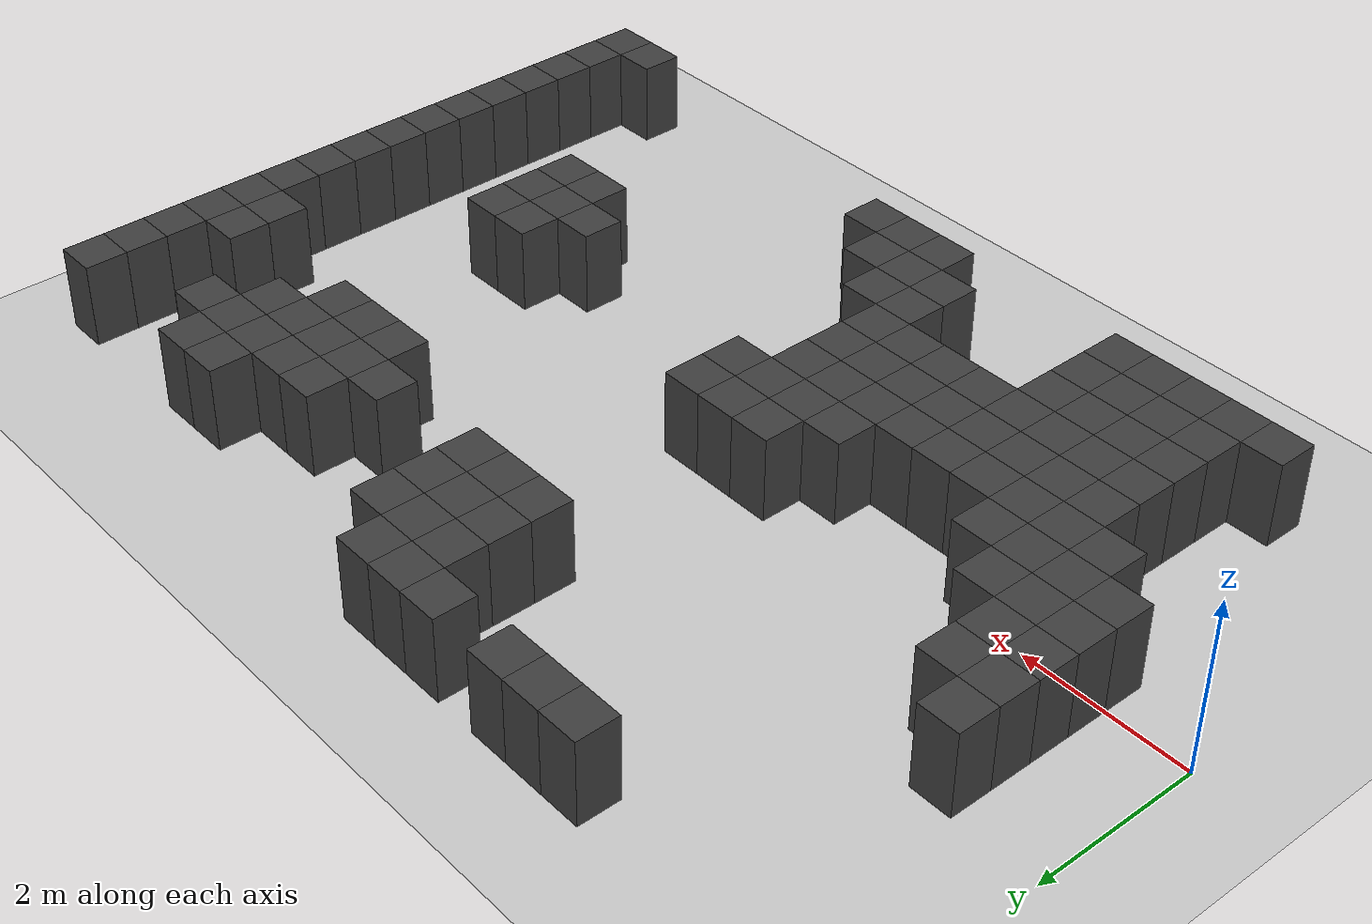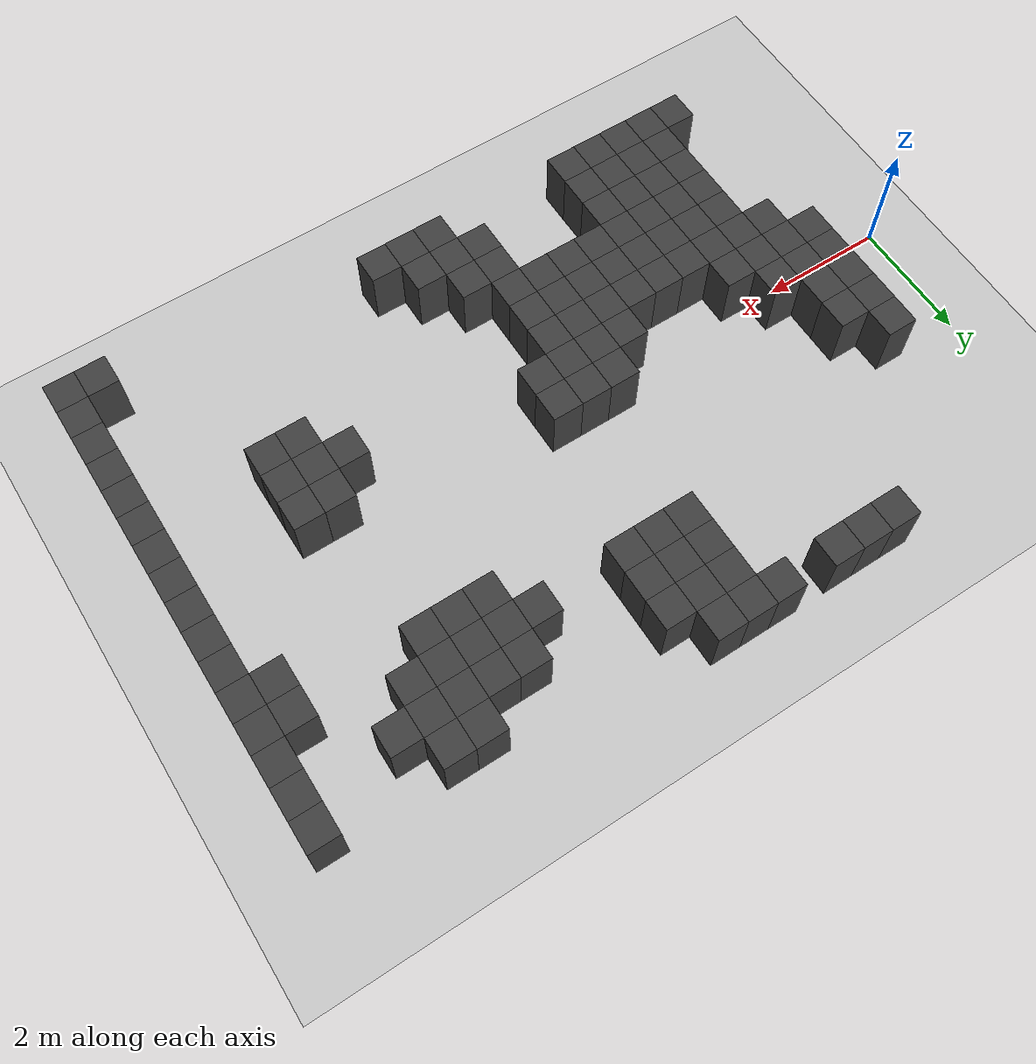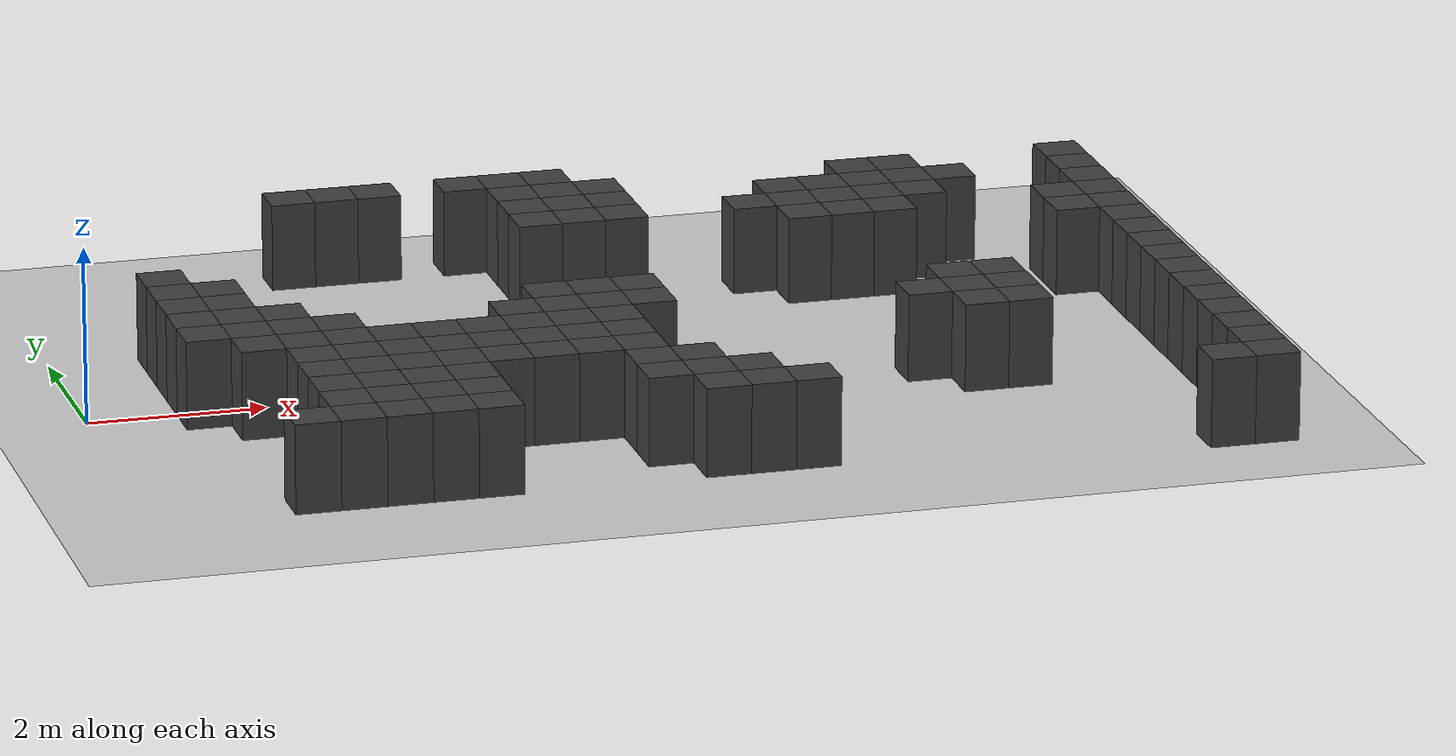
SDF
<sdf version="1.7">
 <world name="map_8661">
  <model name="ground_plane">
   <static>true</static>
   <link name="link">
    <collision name="collision">
     <geometry><plane><normal>0 0 1</normal><size>200 200</size></plane></geometry>
    </collision>
    <visual name="visual">
     <geometry><plane><normal>0 0 1</normal><size>200 200</size></plane></geometry>
     <material><ambient>0.8 0.8 0.8 1</ambient><diffuse>0.8 0.8 0.8 1</diffuse></material>
    </visual>
   </link>
  </model>
  <model name="maze_environment">
   <static>true</static>
   <link name="wall_236">
    <pose>3.250 4.250 0.500 0 0 0</pose>
    <collision name="col"><geometry><box><size>0.5 0.5 1.0</size></box></geometry></collision>
    <visual name="vis">
     <geometry><box><size>0.5 0.5 1.0</size></box></geometry>
     <material><ambient>0.15 0.15 0.15 1</ambient><diffuse>0.25 0.25 0.25 1</diffuse></material>
    </visual>
   </link>
   <link name="wall_237">
    <pose>3.750 4.250 0.500 0 0 0</pose>
    <collision name="col"><geometry><box><size>0.5 0.5 1.0</size></box></geometry></collision>
    <visual name="vis">
     <geometry><box><size>0.5 0.5 1.0</size></box></geometry>
     <material><ambient>0.15 0.15 0.15 1</ambient><diffuse>0.25 0.25 0.25 1</diffuse></material>
    </visual>
   </link>
   <link name="wall_238">
    <pose>4.250 4.250 0.500 0 0 0</pose>
    <collision name="col"><geometry><box><size>0.5 0.5 1.0</size></box></geometry></collision>
    <visual name="vis">
     <geometry><box><size>0.5 0.5 1.0</size></box></geometry>
     <material><ambient>0.15 0.15 0.15 1</ambient><diffuse>0.25 0.25 0.25 1</diffuse></material>
    </visual>
   </link>
   <link name="wall_239">
    <pose>5.250 4.250 0.500 0 0 0</pose>
    <collision name="col"><geometry><box><size>0.5 0.5 1.0</size></box></geometry></collision>
    <visual name="vis">
     <geometry><box><size>0.5 0.5 1.0</size></box></geometry>
     <material><ambient>0.15 0.15 0.15 1</ambient><diffuse>0.25 0.25 0.25 1</diffuse></material>
    </visual>
   </link>
   <link name="wall_240">
    <pose>5.750 4.250 0.500 0 0 0</pose>
    <collision name="col"><geometry><box><size>0.5 0.5 1.0</size></box></geometry></collision>
    <visual name="vis">
     <geometry><box><size>0.5 0.5 1.0</size></box></geometry>
     <material><ambient>0.15 0.15 0.15 1</ambient><diffuse>0.25 0.25 0.25 1</diffuse></material>
    </visual>
   </link>
   <link name="wall_241">
    <pose>6.250 4.250 0.500 0 0 0</pose>
    <collision name="col"><geometry><box><size>0.5 0.5 1.0</size></box></geometry></collision>
    <visual name="vis">
     <geometry><box><size>0.5 0.5 1.0</size></box></geometry>
     <material><ambient>0.15 0.15 0.15 1</ambient><diffuse>0.25 0.25 0.25 1</diffuse></material>
    </visual>
   </link>
   <link name="wall_251">
    <pose>5.750 3.750 0.500 0 0 0</pose>
    <collision name="col"><geometry><box><size>0.5 0.5 1.0</size></box></geometry></collision>
    <visual name="vis">
     <geometry><box><size>0.5 0.5 1.0</size></box></geometry>
     <material><ambient>0.15 0.15 0.15 1</ambient><diffuse>0.25 0.25 0.25 1</diffuse></material>
    </visual>
   </link>
   <link name="wall_252">
    <pose>6.250 3.750 0.500 0 0 0</pose>
    <collision name="col"><geometry><box><size>0.5 0.5 1.0</size></box></geometry></collision>
    <visual name="vis">
     <geometry><box><size>0.5 0.5 1.0</size></box></geometry>
     <material><ambient>0.15 0.15 0.15 1</ambient><diffuse>0.25 0.25 0.25 1</diffuse></material>
    </visual>
   </link>
   <link name="wall_253">
    <pose>6.750 3.750 0.500 0 0 0</pose>
    <collision name="col"><geometry><box><size>0.5 0.5 1.0</size></box></geometry></collision>
    <visual name="vis">
     <geometry><box><size>0.5 0.5 1.0</size></box></geometry>
     <material><ambient>0.15 0.15 0.15 1</ambient><diffuse>0.25 0.25 0.25 1</diffuse></material>
    </visual>
   </link>
   <link name="wall_254">
    <pose>9.750 3.750 0.500 0 0 0</pose>
    <collision name="col"><geometry><box><size>0.5 0.5 1.0</size></box></geometry></collision>
    <visual name="vis">
     <geometry><box><size>0.5 0.5 1.0</size></box></geometry>
     <material><ambient>0.15 0.15 0.15 1</ambient><diffuse>0.25 0.25 0.25 1</diffuse></material>
    </visual>
   </link>
   <link name="wall_255">
    <pose>10.250 3.750 0.500 0 0 0</pose>
    <collision name="col"><geometry><box><size>0.5 0.5 1.0</size></box></geometry></collision>
    <visual name="vis">
     <geometry><box><size>0.5 0.5 1.0</size></box></geometry>
     <material><ambient>0.15 0.15 0.15 1</ambient><diffuse>0.25 0.25 0.25 1</diffuse></material>
    </visual>
   </link>
   <link name="wall_256">
    <pose>12.250 3.750 0.500 0 0 0</pose>
    <collision name="col"><geometry><box><size>0.5 0.5 1.0</size></box></geometry></collision>
    <visual name="vis">
     <geometry><box><size>0.5 0.5 1.0</size></box></geometry>
     <material><ambient>0.15 0.15 0.15 1</ambient><diffuse>0.25 0.25 0.25 1</diffuse></material>
    </visual>
   </link>
   <link name="wall_265">
    <pose>5.750 3.250 0.500 0 0 0</pose>
    <collision name="col"><geometry><box><size>0.5 0.5 1.0</size></box></geometry></collision>
    <visual name="vis">
     <geometry><box><size>0.5 0.5 1.0</size></box></geometry>
     <material><ambient>0.15 0.15 0.15 1</ambient><diffuse>0.25 0.25 0.25 1</diffuse></material>
    </visual>
   </link>
   <link name="wall_266">
    <pose>6.250 3.250 0.500 0 0 0</pose>
    <collision name="col"><geometry><box><size>0.5 0.5 1.0</size></box></geometry></collision>
    <visual name="vis">
     <geometry><box><size>0.5 0.5 1.0</size></box></geometry>
     <material><ambient>0.15 0.15 0.15 1</ambient><diffuse>0.25 0.25 0.25 1</diffuse></material>
    </visual>
   </link>
   <link name="wall_267">
    <pose>6.750 3.250 0.500 0 0 0</pose>
    <collision name="col"><geometry><box><size>0.5 0.5 1.0</size></box></geometry></collision>
    <visual name="vis">
     <geometry><box><size>0.5 0.5 1.0</size></box></geometry>
     <material><ambient>0.15 0.15 0.15 1</ambient><diffuse>0.25 0.25 0.25 1</diffuse></material>
    </visual>
   </link>
   <link name="wall_268">
    <pose>8.750 3.250 0.500 0 0 0</pose>
    <collision name="col"><geometry><box><size>0.5 0.5 1.0</size></box></geometry></collision>
    <visual name="vis">
     <geometry><box><size>0.5 0.5 1.0</size></box></geometry>
     <material><ambient>0.15 0.15 0.15 1</ambient><diffuse>0.25 0.25 0.25 1</diffuse></material>
    </visual>
   </link>
   <link name="wall_269">
    <pose>9.250 3.250 0.500 0 0 0</pose>
    <collision name="col"><geometry><box><size>0.5 0.5 1.0</size></box></geometry></collision>
    <visual name="vis">
     <geometry><box><size>0.5 0.5 1.0</size></box></geometry>
     <material><ambient>0.15 0.15 0.15 1</ambient><diffuse>0.25 0.25 0.25 1</diffuse></material>
    </visual>
   </link>
   <link name="wall_270">
    <pose>9.750 3.250 0.500 0 0 0</pose>
    <collision name="col"><geometry><box><size>0.5 0.5 1.0</size></box></geometry></collision>
    <visual name="vis">
     <geometry><box><size>0.5 0.5 1.0</size></box></geometry>
     <material><ambient>0.15 0.15 0.15 1</ambient><diffuse>0.25 0.25 0.25 1</diffuse></material>
    </visual>
   </link>
   <link name="wall_271">
    <pose>10.250 3.250 0.500 0 0 0</pose>
    <collision name="col"><geometry><box><size>0.5 0.5 1.0</size></box></geometry></collision>
    <visual name="vis">
     <geometry><box><size>0.5 0.5 1.0</size></box></geometry>
     <material><ambient>0.15 0.15 0.15 1</ambient><diffuse>0.25 0.25 0.25 1</diffuse></material>
    </visual>
   </link>
   <link name="wall_272">
    <pose>10.750 3.250 0.500 0 0 0</pose>
    <collision name="col"><geometry><box><size>0.5 0.5 1.0</size></box></geometry></collision>
    <visual name="vis">
     <geometry><box><size>0.5 0.5 1.0</size></box></geometry>
     <material><ambient>0.15 0.15 0.15 1</ambient><diffuse>0.25 0.25 0.25 1</diffuse></material>
    </visual>
   </link>
   <link name="wall_273">
    <pose>12.250 3.250 0.500 0 0 0</pose>
    <collision name="col"><geometry><box><size>0.5 0.5 1.0</size></box></geometry></collision>
    <visual name="vis">
     <geometry><box><size>0.5 0.5 1.0</size></box></geometry>
     <material><ambient>0.15 0.15 0.15 1</ambient><diffuse>0.25 0.25 0.25 1</diffuse></material>
    </visual>
   </link>
   <link name="wall_280">
    <pose>5.750 2.750 0.500 0 0 0</pose>
    <collision name="col"><geometry><box><size>0.5 0.5 1.0</size></box></geometry></collision>
    <visual name="vis">
     <geometry><box><size>0.5 0.5 1.0</size></box></geometry>
     <material><ambient>0.15 0.15 0.15 1</ambient><diffuse>0.25 0.25 0.25 1</diffuse></material>
    </visual>
   </link>
   <link name="wall_281">
    <pose>6.250 2.750 0.500 0 0 0</pose>
    <collision name="col"><geometry><box><size>0.5 0.5 1.0</size></box></geometry></collision>
    <visual name="vis">
     <geometry><box><size>0.5 0.5 1.0</size></box></geometry>
     <material><ambient>0.15 0.15 0.15 1</ambient><diffuse>0.25 0.25 0.25 1</diffuse></material>
    </visual>
   </link>
   <link name="wall_282">
    <pose>6.750 2.750 0.500 0 0 0</pose>
    <collision name="col"><geometry><box><size>0.5 0.5 1.0</size></box></geometry></collision>
    <visual name="vis">
     <geometry><box><size>0.5 0.5 1.0</size></box></geometry>
     <material><ambient>0.15 0.15 0.15 1</ambient><diffuse>0.25 0.25 0.25 1</diffuse></material>
    </visual>
   </link>
   <link name="wall_283">
    <pose>8.250 2.750 0.500 0 0 0</pose>
    <collision name="col"><geometry><box><size>0.5 0.5 1.0</size></box></geometry></collision>
    <visual name="vis">
     <geometry><box><size>0.5 0.5 1.0</size></box></geometry>
     <material><ambient>0.15 0.15 0.15 1</ambient><diffuse>0.25 0.25 0.25 1</diffuse></material>
    </visual>
   </link>
   <link name="wall_284">
    <pose>8.750 2.750 0.500 0 0 0</pose>
    <collision name="col"><geometry><box><size>0.5 0.5 1.0</size></box></geometry></collision>
    <visual name="vis">
     <geometry><box><size>0.5 0.5 1.0</size></box></geometry>
     <material><ambient>0.15 0.15 0.15 1</ambient><diffuse>0.25 0.25 0.25 1</diffuse></material>
    </visual>
   </link>
   <link name="wall_285">
    <pose>9.250 2.750 0.500 0 0 0</pose>
    <collision name="col"><geometry><box><size>0.5 0.5 1.0</size></box></geometry></collision>
    <visual name="vis">
     <geometry><box><size>0.5 0.5 1.0</size></box></geometry>
     <material><ambient>0.15 0.15 0.15 1</ambient><diffuse>0.25 0.25 0.25 1</diffuse></material>
    </visual>
   </link>
   <link name="wall_286">
    <pose>9.750 2.750 0.500 0 0 0</pose>
    <collision name="col"><geometry><box><size>0.5 0.5 1.0</size></box></geometry></collision>
    <visual name="vis">
     <geometry><box><size>0.5 0.5 1.0</size></box></geometry>
     <material><ambient>0.15 0.15 0.15 1</ambient><diffuse>0.25 0.25 0.25 1</diffuse></material>
    </visual>
   </link>
   <link name="wall_287">
    <pose>10.250 2.750 0.500 0 0 0</pose>
    <collision name="col"><geometry><box><size>0.5 0.5 1.0</size></box></geometry></collision>
    <visual name="vis">
     <geometry><box><size>0.5 0.5 1.0</size></box></geometry>
     <material><ambient>0.15 0.15 0.15 1</ambient><diffuse>0.25 0.25 0.25 1</diffuse></material>
    </visual>
   </link>
   <link name="wall_288">
    <pose>12.250 2.750 0.500 0 0 0</pose>
    <collision name="col"><geometry><box><size>0.5 0.5 1.0</size></box></geometry></collision>
    <visual name="vis">
     <geometry><box><size>0.5 0.5 1.0</size></box></geometry>
     <material><ambient>0.15 0.15 0.15 1</ambient><diffuse>0.25 0.25 0.25 1</diffuse></material>
    </visual>
   </link>
   <link name="wall_294">
    <pose>8.750 2.250 0.500 0 0 0</pose>
    <collision name="col"><geometry><box><size>0.5 0.5 1.0</size></box></geometry></collision>
    <visual name="vis">
     <geometry><box><size>0.5 0.5 1.0</size></box></geometry>
     <material><ambient>0.15 0.15 0.15 1</ambient><diffuse>0.25 0.25 0.25 1</diffuse></material>
    </visual>
   </link>
   <link name="wall_295">
    <pose>9.250 2.250 0.500 0 0 0</pose>
    <collision name="col"><geometry><box><size>0.5 0.5 1.0</size></box></geometry></collision>
    <visual name="vis">
     <geometry><box><size>0.5 0.5 1.0</size></box></geometry>
     <material><ambient>0.15 0.15 0.15 1</ambient><diffuse>0.25 0.25 0.25 1</diffuse></material>
    </visual>
   </link>
   <link name="wall_296">
    <pose>9.750 2.250 0.500 0 0 0</pose>
    <collision name="col"><geometry><box><size>0.5 0.5 1.0</size></box></geometry></collision>
    <visual name="vis">
     <geometry><box><size>0.5 0.5 1.0</size></box></geometry>
     <material><ambient>0.15 0.15 0.15 1</ambient><diffuse>0.25 0.25 0.25 1</diffuse></material>
    </visual>
   </link>
   <link name="wall_297">
    <pose>11.750 2.250 0.500 0 0 0</pose>
    <collision name="col"><geometry><box><size>0.5 0.5 1.0</size></box></geometry></collision>
    <visual name="vis">
     <geometry><box><size>0.5 0.5 1.0</size></box></geometry>
     <material><ambient>0.15 0.15 0.15 1</ambient><diffuse>0.25 0.25 0.25 1</diffuse></material>
    </visual>
   </link>
   <link name="wall_298">
    <pose>12.250 2.250 0.500 0 0 0</pose>
    <collision name="col"><geometry><box><size>0.5 0.5 1.0</size></box></geometry></collision>
    <visual name="vis">
     <geometry><box><size>0.5 0.5 1.0</size></box></geometry>
     <material><ambient>0.15 0.15 0.15 1</ambient><diffuse>0.25 0.25 0.25 1</diffuse></material>
    </visual>
   </link>
   <link name="wall_306">
    <pose>1.250 1.750 0.500 0 0 0</pose>
    <collision name="col"><geometry><box><size>0.5 0.5 1.0</size></box></geometry></collision>
    <visual name="vis">
     <geometry><box><size>0.5 0.5 1.0</size></box></geometry>
     <material><ambient>0.15 0.15 0.15 1</ambient><diffuse>0.25 0.25 0.25 1</diffuse></material>
    </visual>
   </link>
   <link name="wall_307">
    <pose>11.750 1.750 0.500 0 0 0</pose>
    <collision name="col"><geometry><box><size>0.5 0.5 1.0</size></box></geometry></collision>
    <visual name="vis">
     <geometry><box><size>0.5 0.5 1.0</size></box></geometry>
     <material><ambient>0.15 0.15 0.15 1</ambient><diffuse>0.25 0.25 0.25 1</diffuse></material>
    </visual>
   </link>
   <link name="wall_308">
    <pose>12.250 1.750 0.500 0 0 0</pose>
    <collision name="col"><geometry><box><size>0.5 0.5 1.0</size></box></geometry></collision>
    <visual name="vis">
     <geometry><box><size>0.5 0.5 1.0</size></box></geometry>
     <material><ambient>0.15 0.15 0.15 1</ambient><diffuse>0.25 0.25 0.25 1</diffuse></material>
    </visual>
   </link>
   <link name="wall_318">
    <pose>1.250 1.250 0.500 0 0 0</pose>
    <collision name="col"><geometry><box><size>0.5 0.5 1.0</size></box></geometry></collision>
    <visual name="vis">
     <geometry><box><size>0.5 0.5 1.0</size></box></geometry>
     <material><ambient>0.15 0.15 0.15 1</ambient><diffuse>0.25 0.25 0.25 1</diffuse></material>
    </visual>
   </link>
   <link name="wall_319">
    <pose>1.750 1.250 0.500 0 0 0</pose>
    <collision name="col"><geometry><box><size>0.5 0.5 1.0</size></box></geometry></collision>
    <visual name="vis">
     <geometry><box><size>0.5 0.5 1.0</size></box></geometry>
     <material><ambient>0.15 0.15 0.15 1</ambient><diffuse>0.25 0.25 0.25 1</diffuse></material>
    </visual>
   </link>
   <link name="wall_320">
    <pose>12.250 1.250 0.500 0 0 0</pose>
    <collision name="col"><geometry><box><size>0.5 0.5 1.0</size></box></geometry></collision>
    <visual name="vis">
     <geometry><box><size>0.5 0.5 1.0</size></box></geometry>
     <material><ambient>0.15 0.15 0.15 1</ambient><diffuse>0.25 0.25 0.25 1</diffuse></material>
    </visual>
   </link>
   <link name="wall_331">
    <pose>1.250 0.750 0.500 0 0 0</pose>
    <collision name="col"><geometry><box><size>0.5 0.5 1.0</size></box></geometry></collision>
    <visual name="vis">
     <geometry><box><size>0.5 0.5 1.0</size></box></geometry>
     <material><ambient>0.15 0.15 0.15 1</ambient><diffuse>0.25 0.25 0.25 1</diffuse></material>
    </visual>
   </link>
   <link name="wall_332">
    <pose>1.750 0.750 0.500 0 0 0</pose>
    <collision name="col"><geometry><box><size>0.5 0.5 1.0</size></box></geometry></collision>
    <visual name="vis">
     <geometry><box><size>0.5 0.5 1.0</size></box></geometry>
     <material><ambient>0.15 0.15 0.15 1</ambient><diffuse>0.25 0.25 0.25 1</diffuse></material>
    </visual>
   </link>
   <link name="wall_333">
    <pose>12.250 0.750 0.500 0 0 0</pose>
    <collision name="col"><geometry><box><size>0.5 0.5 1.0</size></box></geometry></collision>
    <visual name="vis">
     <geometry><box><size>0.5 0.5 1.0</size></box></geometry>
     <material><ambient>0.15 0.15 0.15 1</ambient><diffuse>0.25 0.25 0.25 1</diffuse></material>
    </visual>
   </link>
   <link name="wall_344">
    <pose>1.250 0.250 0.500 0 0 0</pose>
    <collision name="col"><geometry><box><size>0.5 0.5 1.0</size></box></geometry></collision>
    <visual name="vis">
     <geometry><box><size>0.5 0.5 1.0</size></box></geometry>
     <material><ambient>0.15 0.15 0.15 1</ambient><diffuse>0.25 0.25 0.25 1</diffuse></material>
    </visual>
   </link>
   <link name="wall_345">
    <pose>1.750 0.250 0.500 0 0 0</pose>
    <collision name="col"><geometry><box><size>0.5 0.5 1.0</size></box></geometry></collision>
    <visual name="vis">
     <geometry><box><size>0.5 0.5 1.0</size></box></geometry>
     <material><ambient>0.15 0.15 0.15 1</ambient><diffuse>0.25 0.25 0.25 1</diffuse></material>
    </visual>
   </link>
   <link name="wall_346">
    <pose>2.250 0.250 0.500 0 0 0</pose>
    <collision name="col"><geometry><box><size>0.5 0.5 1.0</size></box></geometry></collision>
    <visual name="vis">
     <geometry><box><size>0.5 0.5 1.0</size></box></geometry>
     <material><ambient>0.15 0.15 0.15 1</ambient><diffuse>0.25 0.25 0.25 1</diffuse></material>
    </visual>
   </link>
   <link name="wall_347">
    <pose>5.250 0.250 0.500 0 0 0</pose>
    <collision name="col"><geometry><box><size>0.5 0.5 1.0</size></box></geometry></collision>
    <visual name="vis">
     <geometry><box><size>0.5 0.5 1.0</size></box></geometry>
     <material><ambient>0.15 0.15 0.15 1</ambient><diffuse>0.25 0.25 0.25 1</diffuse></material>
    </visual>
   </link>
   <link name="wall_348">
    <pose>5.750 0.250 0.500 0 0 0</pose>
    <collision name="col"><geometry><box><size>0.5 0.5 1.0</size></box></geometry></collision>
    <visual name="vis">
     <geometry><box><size>0.5 0.5 1.0</size></box></geometry>
     <material><ambient>0.15 0.15 0.15 1</ambient><diffuse>0.25 0.25 0.25 1</diffuse></material>
    </visual>
   </link>
   <link name="wall_349">
    <pose>6.250 0.250 0.500 0 0 0</pose>
    <collision name="col"><geometry><box><size>0.5 0.5 1.0</size></box></geometry></collision>
    <visual name="vis">
     <geometry><box><size>0.5 0.5 1.0</size></box></geometry>
     <material><ambient>0.15 0.15 0.15 1</ambient><diffuse>0.25 0.25 0.25 1</diffuse></material>
    </visual>
   </link>
   <link name="wall_350">
    <pose>12.250 0.250 0.500 0 0 0</pose>
    <collision name="col"><geometry><box><size>0.5 0.5 1.0</size></box></geometry></collision>
    <visual name="vis">
     <geometry><box><size>0.5 0.5 1.0</size></box></geometry>
     <material><ambient>0.15 0.15 0.15 1</ambient><diffuse>0.25 0.25 0.25 1</diffuse></material>
    </visual>
   </link>
   <link name="wall_360">
    <pose>1.250 -0.250 0.500 0 0 0</pose>
    <collision name="col"><geometry><box><size>0.5 0.5 1.0</size></box></geometry></collision>
    <visual name="vis">
     <geometry><box><size>0.5 0.5 1.0</size></box></geometry>
     <material><ambient>0.15 0.15 0.15 1</ambient><diffuse>0.25 0.25 0.25 1</diffuse></material>
    </visual>
   </link>
   <link name="wall_361">
    <pose>1.750 -0.250 0.500 0 0 0</pose>
    <collision name="col"><geometry><box><size>0.5 0.5 1.0</size></box></geometry></collision>
    <visual name="vis">
     <geometry><box><size>0.5 0.5 1.0</size></box></geometry>
     <material><ambient>0.15 0.15 0.15 1</ambient><diffuse>0.25 0.25 0.25 1</diffuse></material>
    </visual>
   </link>
   <link name="wall_362">
    <pose>2.250 -0.250 0.500 0 0 0</pose>
    <collision name="col"><geometry><box><size>0.5 0.5 1.0</size></box></geometry></collision>
    <visual name="vis">
     <geometry><box><size>0.5 0.5 1.0</size></box></geometry>
     <material><ambient>0.15 0.15 0.15 1</ambient><diffuse>0.25 0.25 0.25 1</diffuse></material>
    </visual>
   </link>
   <link name="wall_363">
    <pose>2.750 -0.250 0.500 0 0 0</pose>
    <collision name="col"><geometry><box><size>0.5 0.5 1.0</size></box></geometry></collision>
    <visual name="vis">
     <geometry><box><size>0.5 0.5 1.0</size></box></geometry>
     <material><ambient>0.15 0.15 0.15 1</ambient><diffuse>0.25 0.25 0.25 1</diffuse></material>
    </visual>
   </link>
   <link name="wall_364">
    <pose>4.750 -0.250 0.500 0 0 0</pose>
    <collision name="col"><geometry><box><size>0.5 0.5 1.0</size></box></geometry></collision>
    <visual name="vis">
     <geometry><box><size>0.5 0.5 1.0</size></box></geometry>
     <material><ambient>0.15 0.15 0.15 1</ambient><diffuse>0.25 0.25 0.25 1</diffuse></material>
    </visual>
   </link>
   <link name="wall_365">
    <pose>5.250 -0.250 0.500 0 0 0</pose>
    <collision name="col"><geometry><box><size>0.5 0.5 1.0</size></box></geometry></collision>
    <visual name="vis">
     <geometry><box><size>0.5 0.5 1.0</size></box></geometry>
     <material><ambient>0.15 0.15 0.15 1</ambient><diffuse>0.25 0.25 0.25 1</diffuse></material>
    </visual>
   </link>
   <link name="wall_366">
    <pose>5.750 -0.250 0.500 0 0 0</pose>
    <collision name="col"><geometry><box><size>0.5 0.5 1.0</size></box></geometry></collision>
    <visual name="vis">
     <geometry><box><size>0.5 0.5 1.0</size></box></geometry>
     <material><ambient>0.15 0.15 0.15 1</ambient><diffuse>0.25 0.25 0.25 1</diffuse></material>
    </visual>
   </link>
   <link name="wall_367">
    <pose>6.250 -0.250 0.500 0 0 0</pose>
    <collision name="col"><geometry><box><size>0.5 0.5 1.0</size></box></geometry></collision>
    <visual name="vis">
     <geometry><box><size>0.5 0.5 1.0</size></box></geometry>
     <material><ambient>0.15 0.15 0.15 1</ambient><diffuse>0.25 0.25 0.25 1</diffuse></material>
    </visual>
   </link>
   <link name="wall_368">
    <pose>9.750 -0.250 0.500 0 0 0</pose>
    <collision name="col"><geometry><box><size>0.5 0.5 1.0</size></box></geometry></collision>
    <visual name="vis">
     <geometry><box><size>0.5 0.5 1.0</size></box></geometry>
     <material><ambient>0.15 0.15 0.15 1</ambient><diffuse>0.25 0.25 0.25 1</diffuse></material>
    </visual>
   </link>
   <link name="wall_369">
    <pose>10.250 -0.250 0.500 0 0 0</pose>
    <collision name="col"><geometry><box><size>0.5 0.5 1.0</size></box></geometry></collision>
    <visual name="vis">
     <geometry><box><size>0.5 0.5 1.0</size></box></geometry>
     <material><ambient>0.15 0.15 0.15 1</ambient><diffuse>0.25 0.25 0.25 1</diffuse></material>
    </visual>
   </link>
   <link name="wall_370">
    <pose>12.250 -0.250 0.500 0 0 0</pose>
    <collision name="col"><geometry><box><size>0.5 0.5 1.0</size></box></geometry></collision>
    <visual name="vis">
     <geometry><box><size>0.5 0.5 1.0</size></box></geometry>
     <material><ambient>0.15 0.15 0.15 1</ambient><diffuse>0.25 0.25 0.25 1</diffuse></material>
    </visual>
   </link>
   <link name="wall_379">
    <pose>1.750 -0.750 0.500 0 0 0</pose>
    <collision name="col"><geometry><box><size>0.5 0.5 1.0</size></box></geometry></collision>
    <visual name="vis">
     <geometry><box><size>0.5 0.5 1.0</size></box></geometry>
     <material><ambient>0.15 0.15 0.15 1</ambient><diffuse>0.25 0.25 0.25 1</diffuse></material>
    </visual>
   </link>
   <link name="wall_380">
    <pose>2.250 -0.750 0.500 0 0 0</pose>
    <collision name="col"><geometry><box><size>0.5 0.5 1.0</size></box></geometry></collision>
    <visual name="vis">
     <geometry><box><size>0.5 0.5 1.0</size></box></geometry>
     <material><ambient>0.15 0.15 0.15 1</ambient><diffuse>0.25 0.25 0.25 1</diffuse></material>
    </visual>
   </link>
   <link name="wall_381">
    <pose>2.750 -0.750 0.500 0 0 0</pose>
    <collision name="col"><geometry><box><size>0.5 0.5 1.0</size></box></geometry></collision>
    <visual name="vis">
     <geometry><box><size>0.5 0.5 1.0</size></box></geometry>
     <material><ambient>0.15 0.15 0.15 1</ambient><diffuse>0.25 0.25 0.25 1</diffuse></material>
    </visual>
   </link>
   <link name="wall_382">
    <pose>3.250 -0.750 0.500 0 0 0</pose>
    <collision name="col"><geometry><box><size>0.5 0.5 1.0</size></box></geometry></collision>
    <visual name="vis">
     <geometry><box><size>0.5 0.5 1.0</size></box></geometry>
     <material><ambient>0.15 0.15 0.15 1</ambient><diffuse>0.25 0.25 0.25 1</diffuse></material>
    </visual>
   </link>
   <link name="wall_383">
    <pose>3.750 -0.750 0.500 0 0 0</pose>
    <collision name="col"><geometry><box><size>0.5 0.5 1.0</size></box></geometry></collision>
    <visual name="vis">
     <geometry><box><size>0.5 0.5 1.0</size></box></geometry>
     <material><ambient>0.15 0.15 0.15 1</ambient><diffuse>0.25 0.25 0.25 1</diffuse></material>
    </visual>
   </link>
   <link name="wall_384">
    <pose>4.250 -0.750 0.500 0 0 0</pose>
    <collision name="col"><geometry><box><size>0.5 0.5 1.0</size></box></geometry></collision>
    <visual name="vis">
     <geometry><box><size>0.5 0.5 1.0</size></box></geometry>
     <material><ambient>0.15 0.15 0.15 1</ambient><diffuse>0.25 0.25 0.25 1</diffuse></material>
    </visual>
   </link>
   <link name="wall_385">
    <pose>4.750 -0.750 0.500 0 0 0</pose>
    <collision name="col"><geometry><box><size>0.5 0.5 1.0</size></box></geometry></collision>
    <visual name="vis">
     <geometry><box><size>0.5 0.5 1.0</size></box></geometry>
     <material><ambient>0.15 0.15 0.15 1</ambient><diffuse>0.25 0.25 0.25 1</diffuse></material>
    </visual>
   </link>
   <link name="wall_386">
    <pose>5.250 -0.750 0.500 0 0 0</pose>
    <collision name="col"><geometry><box><size>0.5 0.5 1.0</size></box></geometry></collision>
    <visual name="vis">
     <geometry><box><size>0.5 0.5 1.0</size></box></geometry>
     <material><ambient>0.15 0.15 0.15 1</ambient><diffuse>0.25 0.25 0.25 1</diffuse></material>
    </visual>
   </link>
   <link name="wall_387">
    <pose>5.750 -0.750 0.500 0 0 0</pose>
    <collision name="col"><geometry><box><size>0.5 0.5 1.0</size></box></geometry></collision>
    <visual name="vis">
     <geometry><box><size>0.5 0.5 1.0</size></box></geometry>
     <material><ambient>0.15 0.15 0.15 1</ambient><diffuse>0.25 0.25 0.25 1</diffuse></material>
    </visual>
   </link>
   <link name="wall_388">
    <pose>9.250 -0.750 0.500 0 0 0</pose>
    <collision name="col"><geometry><box><size>0.5 0.5 1.0</size></box></geometry></collision>
    <visual name="vis">
     <geometry><box><size>0.5 0.5 1.0</size></box></geometry>
     <material><ambient>0.15 0.15 0.15 1</ambient><diffuse>0.25 0.25 0.25 1</diffuse></material>
    </visual>
   </link>
   <link name="wall_389">
    <pose>9.750 -0.750 0.500 0 0 0</pose>
    <collision name="col"><geometry><box><size>0.5 0.5 1.0</size></box></geometry></collision>
    <visual name="vis">
     <geometry><box><size>0.5 0.5 1.0</size></box></geometry>
     <material><ambient>0.15 0.15 0.15 1</ambient><diffuse>0.25 0.25 0.25 1</diffuse></material>
    </visual>
   </link>
   <link name="wall_390">
    <pose>10.250 -0.750 0.500 0 0 0</pose>
    <collision name="col"><geometry><box><size>0.5 0.5 1.0</size></box></geometry></collision>
    <visual name="vis">
     <geometry><box><size>0.5 0.5 1.0</size></box></geometry>
     <material><ambient>0.15 0.15 0.15 1</ambient><diffuse>0.25 0.25 0.25 1</diffuse></material>
    </visual>
   </link>
   <link name="wall_391">
    <pose>12.250 -0.750 0.500 0 0 0</pose>
    <collision name="col"><geometry><box><size>0.5 0.5 1.0</size></box></geometry></collision>
    <visual name="vis">
     <geometry><box><size>0.5 0.5 1.0</size></box></geometry>
     <material><ambient>0.15 0.15 0.15 1</ambient><diffuse>0.25 0.25 0.25 1</diffuse></material>
    </visual>
   </link>
   <link name="wall_402">
    <pose>2.250 -1.250 0.500 0 0 0</pose>
    <collision name="col"><geometry><box><size>0.5 0.5 1.0</size></box></geometry></collision>
    <visual name="vis">
     <geometry><box><size>0.5 0.5 1.0</size></box></geometry>
     <material><ambient>0.15 0.15 0.15 1</ambient><diffuse>0.25 0.25 0.25 1</diffuse></material>
    </visual>
   </link>
   <link name="wall_403">
    <pose>2.750 -1.250 0.500 0 0 0</pose>
    <collision name="col"><geometry><box><size>0.5 0.5 1.0</size></box></geometry></collision>
    <visual name="vis">
     <geometry><box><size>0.5 0.5 1.0</size></box></geometry>
     <material><ambient>0.15 0.15 0.15 1</ambient><diffuse>0.25 0.25 0.25 1</diffuse></material>
    </visual>
   </link>
   <link name="wall_404">
    <pose>3.250 -1.250 0.500 0 0 0</pose>
    <collision name="col"><geometry><box><size>0.5 0.5 1.0</size></box></geometry></collision>
    <visual name="vis">
     <geometry><box><size>0.5 0.5 1.0</size></box></geometry>
     <material><ambient>0.15 0.15 0.15 1</ambient><diffuse>0.25 0.25 0.25 1</diffuse></material>
    </visual>
   </link>
   <link name="wall_405">
    <pose>3.750 -1.250 0.500 0 0 0</pose>
    <collision name="col"><geometry><box><size>0.5 0.5 1.0</size></box></geometry></collision>
    <visual name="vis">
     <geometry><box><size>0.5 0.5 1.0</size></box></geometry>
     <material><ambient>0.15 0.15 0.15 1</ambient><diffuse>0.25 0.25 0.25 1</diffuse></material>
    </visual>
   </link>
   <link name="wall_406">
    <pose>4.250 -1.250 0.500 0 0 0</pose>
    <collision name="col"><geometry><box><size>0.5 0.5 1.0</size></box></geometry></collision>
    <visual name="vis">
     <geometry><box><size>0.5 0.5 1.0</size></box></geometry>
     <material><ambient>0.15 0.15 0.15 1</ambient><diffuse>0.25 0.25 0.25 1</diffuse></material>
    </visual>
   </link>
   <link name="wall_407">
    <pose>4.750 -1.250 0.500 0 0 0</pose>
    <collision name="col"><geometry><box><size>0.5 0.5 1.0</size></box></geometry></collision>
    <visual name="vis">
     <geometry><box><size>0.5 0.5 1.0</size></box></geometry>
     <material><ambient>0.15 0.15 0.15 1</ambient><diffuse>0.25 0.25 0.25 1</diffuse></material>
    </visual>
   </link>
   <link name="wall_408">
    <pose>5.250 -1.250 0.500 0 0 0</pose>
    <collision name="col"><geometry><box><size>0.5 0.5 1.0</size></box></geometry></collision>
    <visual name="vis">
     <geometry><box><size>0.5 0.5 1.0</size></box></geometry>
     <material><ambient>0.15 0.15 0.15 1</ambient><diffuse>0.25 0.25 0.25 1</diffuse></material>
    </visual>
   </link>
   <link name="wall_409">
    <pose>5.750 -1.250 0.500 0 0 0</pose>
    <collision name="col"><geometry><box><size>0.5 0.5 1.0</size></box></geometry></collision>
    <visual name="vis">
     <geometry><box><size>0.5 0.5 1.0</size></box></geometry>
     <material><ambient>0.15 0.15 0.15 1</ambient><diffuse>0.25 0.25 0.25 1</diffuse></material>
    </visual>
   </link>
   <link name="wall_410">
    <pose>9.750 -1.250 0.500 0 0 0</pose>
    <collision name="col"><geometry><box><size>0.5 0.5 1.0</size></box></geometry></collision>
    <visual name="vis">
     <geometry><box><size>0.5 0.5 1.0</size></box></geometry>
     <material><ambient>0.15 0.15 0.15 1</ambient><diffuse>0.25 0.25 0.25 1</diffuse></material>
    </visual>
   </link>
   <link name="wall_411">
    <pose>10.250 -1.250 0.500 0 0 0</pose>
    <collision name="col"><geometry><box><size>0.5 0.5 1.0</size></box></geometry></collision>
    <visual name="vis">
     <geometry><box><size>0.5 0.5 1.0</size></box></geometry>
     <material><ambient>0.15 0.15 0.15 1</ambient><diffuse>0.25 0.25 0.25 1</diffuse></material>
    </visual>
   </link>
   <link name="wall_412">
    <pose>12.250 -1.250 0.500 0 0 0</pose>
    <collision name="col"><geometry><box><size>0.5 0.5 1.0</size></box></geometry></collision>
    <visual name="vis">
     <geometry><box><size>0.5 0.5 1.0</size></box></geometry>
     <material><ambient>0.15 0.15 0.15 1</ambient><diffuse>0.25 0.25 0.25 1</diffuse></material>
    </visual>
   </link>
   <link name="wall_421">
    <pose>2.250 -1.750 0.500 0 0 0</pose>
    <collision name="col"><geometry><box><size>0.5 0.5 1.0</size></box></geometry></collision>
    <visual name="vis">
     <geometry><box><size>0.5 0.5 1.0</size></box></geometry>
     <material><ambient>0.15 0.15 0.15 1</ambient><diffuse>0.25 0.25 0.25 1</diffuse></material>
    </visual>
   </link>
   <link name="wall_422">
    <pose>2.750 -1.750 0.500 0 0 0</pose>
    <collision name="col"><geometry><box><size>0.5 0.5 1.0</size></box></geometry></collision>
    <visual name="vis">
     <geometry><box><size>0.5 0.5 1.0</size></box></geometry>
     <material><ambient>0.15 0.15 0.15 1</ambient><diffuse>0.25 0.25 0.25 1</diffuse></material>
    </visual>
   </link>
   <link name="wall_423">
    <pose>3.250 -1.750 0.500 0 0 0</pose>
    <collision name="col"><geometry><box><size>0.5 0.5 1.0</size></box></geometry></collision>
    <visual name="vis">
     <geometry><box><size>0.5 0.5 1.0</size></box></geometry>
     <material><ambient>0.15 0.15 0.15 1</ambient><diffuse>0.25 0.25 0.25 1</diffuse></material>
    </visual>
   </link>
   <link name="wall_424">
    <pose>3.750 -1.750 0.500 0 0 0</pose>
    <collision name="col"><geometry><box><size>0.5 0.5 1.0</size></box></geometry></collision>
    <visual name="vis">
     <geometry><box><size>0.5 0.5 1.0</size></box></geometry>
     <material><ambient>0.15 0.15 0.15 1</ambient><diffuse>0.25 0.25 0.25 1</diffuse></material>
    </visual>
   </link>
   <link name="wall_425">
    <pose>4.250 -1.750 0.500 0 0 0</pose>
    <collision name="col"><geometry><box><size>0.5 0.5 1.0</size></box></geometry></collision>
    <visual name="vis">
     <geometry><box><size>0.5 0.5 1.0</size></box></geometry>
     <material><ambient>0.15 0.15 0.15 1</ambient><diffuse>0.25 0.25 0.25 1</diffuse></material>
    </visual>
   </link>
   <link name="wall_426">
    <pose>4.750 -1.750 0.500 0 0 0</pose>
    <collision name="col"><geometry><box><size>0.5 0.5 1.0</size></box></geometry></collision>
    <visual name="vis">
     <geometry><box><size>0.5 0.5 1.0</size></box></geometry>
     <material><ambient>0.15 0.15 0.15 1</ambient><diffuse>0.25 0.25 0.25 1</diffuse></material>
    </visual>
   </link>
   <link name="wall_427">
    <pose>5.250 -1.750 0.500 0 0 0</pose>
    <collision name="col"><geometry><box><size>0.5 0.5 1.0</size></box></geometry></collision>
    <visual name="vis">
     <geometry><box><size>0.5 0.5 1.0</size></box></geometry>
     <material><ambient>0.15 0.15 0.15 1</ambient><diffuse>0.25 0.25 0.25 1</diffuse></material>
    </visual>
   </link>
   <link name="wall_428">
    <pose>5.750 -1.750 0.500 0 0 0</pose>
    <collision name="col"><geometry><box><size>0.5 0.5 1.0</size></box></geometry></collision>
    <visual name="vis">
     <geometry><box><size>0.5 0.5 1.0</size></box></geometry>
     <material><ambient>0.15 0.15 0.15 1</ambient><diffuse>0.25 0.25 0.25 1</diffuse></material>
    </visual>
   </link>
   <link name="wall_429">
    <pose>12.250 -1.750 0.500 0 0 0</pose>
    <collision name="col"><geometry><box><size>0.5 0.5 1.0</size></box></geometry></collision>
    <visual name="vis">
     <geometry><box><size>0.5 0.5 1.0</size></box></geometry>
     <material><ambient>0.15 0.15 0.15 1</ambient><diffuse>0.25 0.25 0.25 1</diffuse></material>
    </visual>
   </link>
   <link name="wall_432">
    <pose>2.250 -2.250 0.500 0 0 0</pose>
    <collision name="col"><geometry><box><size>0.5 0.5 1.0</size></box></geometry></collision>
    <visual name="vis">
     <geometry><box><size>0.5 0.5 1.0</size></box></geometry>
     <material><ambient>0.15 0.15 0.15 1</ambient><diffuse>0.25 0.25 0.25 1</diffuse></material>
    </visual>
   </link>
   <link name="wall_433">
    <pose>2.750 -2.250 0.500 0 0 0</pose>
    <collision name="col"><geometry><box><size>0.5 0.5 1.0</size></box></geometry></collision>
    <visual name="vis">
     <geometry><box><size>0.5 0.5 1.0</size></box></geometry>
     <material><ambient>0.15 0.15 0.15 1</ambient><diffuse>0.25 0.25 0.25 1</diffuse></material>
    </visual>
   </link>
   <link name="wall_434">
    <pose>3.250 -2.250 0.500 0 0 0</pose>
    <collision name="col"><geometry><box><size>0.5 0.5 1.0</size></box></geometry></collision>
    <visual name="vis">
     <geometry><box><size>0.5 0.5 1.0</size></box></geometry>
     <material><ambient>0.15 0.15 0.15 1</ambient><diffuse>0.25 0.25 0.25 1</diffuse></material>
    </visual>
   </link>
   <link name="wall_435">
    <pose>3.750 -2.250 0.500 0 0 0</pose>
    <collision name="col"><geometry><box><size>0.5 0.5 1.0</size></box></geometry></collision>
    <visual name="vis">
     <geometry><box><size>0.5 0.5 1.0</size></box></geometry>
     <material><ambient>0.15 0.15 0.15 1</ambient><diffuse>0.25 0.25 0.25 1</diffuse></material>
    </visual>
   </link>
   <link name="wall_436">
    <pose>5.750 -2.250 0.500 0 0 0</pose>
    <collision name="col"><geometry><box><size>0.5 0.5 1.0</size></box></geometry></collision>
    <visual name="vis">
     <geometry><box><size>0.5 0.5 1.0</size></box></geometry>
     <material><ambient>0.15 0.15 0.15 1</ambient><diffuse>0.25 0.25 0.25 1</diffuse></material>
    </visual>
   </link>
   <link name="wall_437">
    <pose>6.250 -2.250 0.500 0 0 0</pose>
    <collision name="col"><geometry><box><size>0.5 0.5 1.0</size></box></geometry></collision>
    <visual name="vis">
     <geometry><box><size>0.5 0.5 1.0</size></box></geometry>
     <material><ambient>0.15 0.15 0.15 1</ambient><diffuse>0.25 0.25 0.25 1</diffuse></material>
    </visual>
   </link>
   <link name="wall_438">
    <pose>12.250 -2.250 0.500 0 0 0</pose>
    <collision name="col"><geometry><box><size>0.5 0.5 1.0</size></box></geometry></collision>
    <visual name="vis">
     <geometry><box><size>0.5 0.5 1.0</size></box></geometry>
     <material><ambient>0.15 0.15 0.15 1</ambient><diffuse>0.25 0.25 0.25 1</diffuse></material>
    </visual>
   </link>
   <link name="wall_440">
    <pose>2.250 -2.750 0.500 0 0 0</pose>
    <collision name="col"><geometry><box><size>0.5 0.5 1.0</size></box></geometry></collision>
    <visual name="vis">
     <geometry><box><size>0.5 0.5 1.0</size></box></geometry>
     <material><ambient>0.15 0.15 0.15 1</ambient><diffuse>0.25 0.25 0.25 1</diffuse></material>
    </visual>
   </link>
   <link name="wall_441">
    <pose>2.750 -2.750 0.500 0 0 0</pose>
    <collision name="col"><geometry><box><size>0.5 0.5 1.0</size></box></geometry></collision>
    <visual name="vis">
     <geometry><box><size>0.5 0.5 1.0</size></box></geometry>
     <material><ambient>0.15 0.15 0.15 1</ambient><diffuse>0.25 0.25 0.25 1</diffuse></material>
    </visual>
   </link>
   <link name="wall_442">
    <pose>3.250 -2.750 0.500 0 0 0</pose>
    <collision name="col"><geometry><box><size>0.5 0.5 1.0</size></box></geometry></collision>
    <visual name="vis">
     <geometry><box><size>0.5 0.5 1.0</size></box></geometry>
     <material><ambient>0.15 0.15 0.15 1</ambient><diffuse>0.25 0.25 0.25 1</diffuse></material>
    </visual>
   </link>
   <link name="wall_443">
    <pose>3.750 -2.750 0.500 0 0 0</pose>
    <collision name="col"><geometry><box><size>0.5 0.5 1.0</size></box></geometry></collision>
    <visual name="vis">
     <geometry><box><size>0.5 0.5 1.0</size></box></geometry>
     <material><ambient>0.15 0.15 0.15 1</ambient><diffuse>0.25 0.25 0.25 1</diffuse></material>
    </visual>
   </link>
   <link name="wall_444">
    <pose>5.750 -2.750 0.500 0 0 0</pose>
    <collision name="col"><geometry><box><size>0.5 0.5 1.0</size></box></geometry></collision>
    <visual name="vis">
     <geometry><box><size>0.5 0.5 1.0</size></box></geometry>
     <material><ambient>0.15 0.15 0.15 1</ambient><diffuse>0.25 0.25 0.25 1</diffuse></material>
    </visual>
   </link>
   <link name="wall_445">
    <pose>6.250 -2.750 0.500 0 0 0</pose>
    <collision name="col"><geometry><box><size>0.5 0.5 1.0</size></box></geometry></collision>
    <visual name="vis">
     <geometry><box><size>0.5 0.5 1.0</size></box></geometry>
     <material><ambient>0.15 0.15 0.15 1</ambient><diffuse>0.25 0.25 0.25 1</diffuse></material>
    </visual>
   </link>
   <link name="wall_446">
    <pose>6.750 -2.750 0.500 0 0 0</pose>
    <collision name="col"><geometry><box><size>0.5 0.5 1.0</size></box></geometry></collision>
    <visual name="vis">
     <geometry><box><size>0.5 0.5 1.0</size></box></geometry>
     <material><ambient>0.15 0.15 0.15 1</ambient><diffuse>0.25 0.25 0.25 1</diffuse></material>
    </visual>
   </link>
   <link name="wall_447">
    <pose>12.250 -2.750 0.500 0 0 0</pose>
    <collision name="col"><geometry><box><size>0.5 0.5 1.0</size></box></geometry></collision>
    <visual name="vis">
     <geometry><box><size>0.5 0.5 1.0</size></box></geometry>
     <material><ambient>0.15 0.15 0.15 1</ambient><diffuse>0.25 0.25 0.25 1</diffuse></material>
    </visual>
   </link>
   <link name="wall_449">
    <pose>1.750 -3.250 0.500 0 0 0</pose>
    <collision name="col"><geometry><box><size>0.5 0.5 1.0</size></box></geometry></collision>
    <visual name="vis">
     <geometry><box><size>0.5 0.5 1.0</size></box></geometry>
     <material><ambient>0.15 0.15 0.15 1</ambient><diffuse>0.25 0.25 0.25 1</diffuse></material>
    </visual>
   </link>
   <link name="wall_450">
    <pose>2.250 -3.250 0.500 0 0 0</pose>
    <collision name="col"><geometry><box><size>0.5 0.5 1.0</size></box></geometry></collision>
    <visual name="vis">
     <geometry><box><size>0.5 0.5 1.0</size></box></geometry>
     <material><ambient>0.15 0.15 0.15 1</ambient><diffuse>0.25 0.25 0.25 1</diffuse></material>
    </visual>
   </link>
   <link name="wall_451">
    <pose>2.750 -3.250 0.500 0 0 0</pose>
    <collision name="col"><geometry><box><size>0.5 0.5 1.0</size></box></geometry></collision>
    <visual name="vis">
     <geometry><box><size>0.5 0.5 1.0</size></box></geometry>
     <material><ambient>0.15 0.15 0.15 1</ambient><diffuse>0.25 0.25 0.25 1</diffuse></material>
    </visual>
   </link>
   <link name="wall_452">
    <pose>3.250 -3.250 0.500 0 0 0</pose>
    <collision name="col"><geometry><box><size>0.5 0.5 1.0</size></box></geometry></collision>
    <visual name="vis">
     <geometry><box><size>0.5 0.5 1.0</size></box></geometry>
     <material><ambient>0.15 0.15 0.15 1</ambient><diffuse>0.25 0.25 0.25 1</diffuse></material>
    </visual>
   </link>
   <link name="wall_453">
    <pose>3.750 -3.250 0.500 0 0 0</pose>
    <collision name="col"><geometry><box><size>0.5 0.5 1.0</size></box></geometry></collision>
    <visual name="vis">
     <geometry><box><size>0.5 0.5 1.0</size></box></geometry>
     <material><ambient>0.15 0.15 0.15 1</ambient><diffuse>0.25 0.25 0.25 1</diffuse></material>
    </visual>
   </link>
   <link name="wall_454">
    <pose>6.250 -3.250 0.500 0 0 0</pose>
    <collision name="col"><geometry><box><size>0.5 0.5 1.0</size></box></geometry></collision>
    <visual name="vis">
     <geometry><box><size>0.5 0.5 1.0</size></box></geometry>
     <material><ambient>0.15 0.15 0.15 1</ambient><diffuse>0.25 0.25 0.25 1</diffuse></material>
    </visual>
   </link>
   <link name="wall_455">
    <pose>6.750 -3.250 0.500 0 0 0</pose>
    <collision name="col"><geometry><box><size>0.5 0.5 1.0</size></box></geometry></collision>
    <visual name="vis">
     <geometry><box><size>0.5 0.5 1.0</size></box></geometry>
     <material><ambient>0.15 0.15 0.15 1</ambient><diffuse>0.25 0.25 0.25 1</diffuse></material>
    </visual>
   </link>
   <link name="wall_456">
    <pose>7.250 -3.250 0.500 0 0 0</pose>
    <collision name="col"><geometry><box><size>0.5 0.5 1.0</size></box></geometry></collision>
    <visual name="vis">
     <geometry><box><size>0.5 0.5 1.0</size></box></geometry>
     <material><ambient>0.15 0.15 0.15 1</ambient><diffuse>0.25 0.25 0.25 1</diffuse></material>
    </visual>
   </link>
   <link name="wall_457">
    <pose>12.250 -3.250 0.500 0 0 0</pose>
    <collision name="col"><geometry><box><size>0.5 0.5 1.0</size></box></geometry></collision>
    <visual name="vis">
     <geometry><box><size>0.5 0.5 1.0</size></box></geometry>
     <material><ambient>0.15 0.15 0.15 1</ambient><diffuse>0.25 0.25 0.25 1</diffuse></material>
    </visual>
   </link>
   <link name="wall_470">
    <pose>11.750 -3.750 0.500 0 0 0</pose>
    <collision name="col"><geometry><box><size>0.5 0.5 1.0</size></box></geometry></collision>
    <visual name="vis">
     <geometry><box><size>0.5 0.5 1.0</size></box></geometry>
     <material><ambient>0.15 0.15 0.15 1</ambient><diffuse>0.25 0.25 0.25 1</diffuse></material>
    </visual>
   </link>
   <link name="wall_471">
    <pose>12.250 -3.750 0.500 0 0 0</pose>
    <collision name="col"><geometry><box><size>0.5 0.5 1.0</size></box></geometry></collision>
    <visual name="vis">
     <geometry><box><size>0.5 0.5 1.0</size></box></geometry>
     <material><ambient>0.15 0.15 0.15 1</ambient><diffuse>0.25 0.25 0.25 1</diffuse></material>
    </visual>
   </link>
  </model>
 </world>
</sdf>
